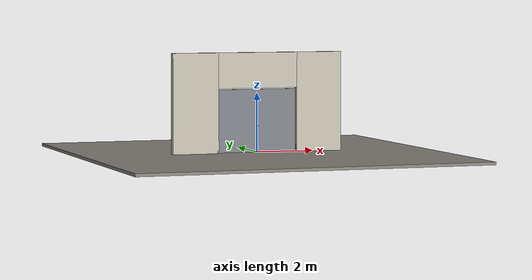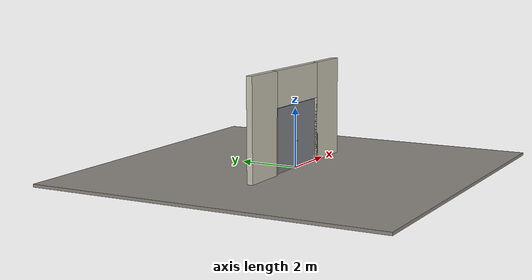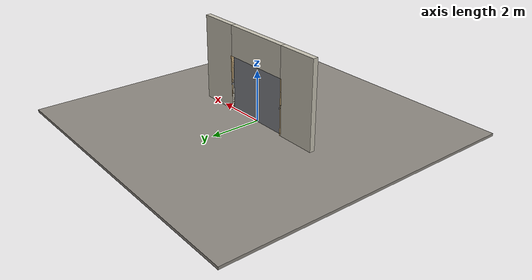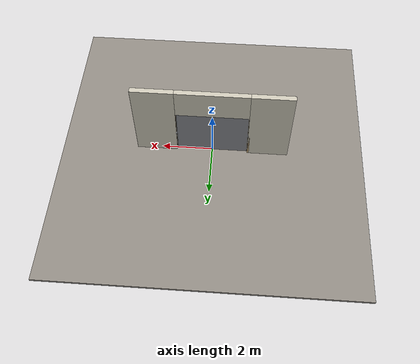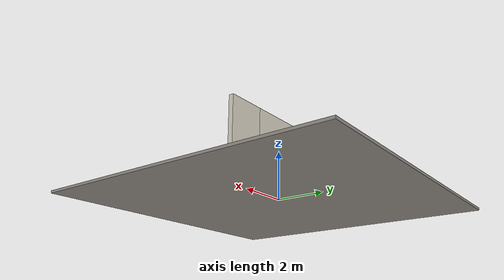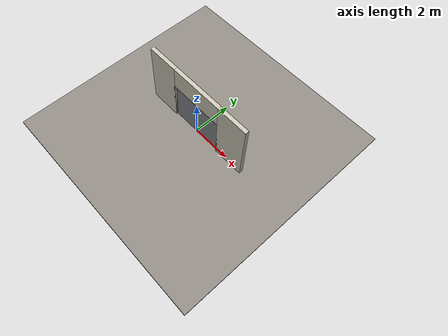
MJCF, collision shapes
<?xml version="1.0" ?>
<mujoco model="db0104_garage_tiltup_full">
  <compiler angle="radian" meshdir="../../hardware" texturedir="../../textures" autolimits="true" inertiafromgeom="false"/>
  <option timestep="0.002" integrator="implicitfast" cone="elliptic" impratio="10" noslip_iterations="3">
    <flag multiccd="enable"/>
  </option>
  <size memory="16M"/>
  <default>
    <geom condim="4" solref="0.005 1" solimp="0.95 0.99 0.001"/>
    <joint solreflimit="0.005 1" solimplimit="0.95 0.99 0.001"/>
    <tendon solreflimit="0.005 1"/>
    <equality solref="0.002 1"/>
  </default>
  <visual>
    <headlight ambient="0.4 0.4 0.4" diffuse="0.7 0.7 0.7" specular="0.2 0.2 0.2"/>
    <quality shadowsize="4096"/>
    <map znear="0.01" zfar="60"/>
  </visual>
  <asset>
    <mesh name="lever_01c630149d" file="lever_01c630149d.obj"/>
    <material name="mat_floor" rgba="0.55 0.53 0.5 1" specular="0.2" shininess="0.15" reflectance="0"/>
    <material name="mat_wall" rgba="0.78 0.76 0.7 1" specular="0.2" shininess="0.1" reflectance="0"/>
    <material name="mat_frame" rgba="0.82 0.7 0.5 1" specular="0.2" shininess="0.45" reflectance="0"/>
    <material name="mat_door" rgba="0.5 0.51 0.53 1" specular="0.23" shininess="0.4" reflectance="0.02"/>
    <material name="mat_track" rgba="0.65 0.66 0.68 1" specular="0.74" shininess="0.5" reflectance="0.36"/>
    <material name="mat_op_black_matte_metal" rgba="0.05 0.05 0.05 1" specular="0.38" shininess="0.3" reflectance="0.12"/>
    <material name="mat_trim" rgba="0.85 0.66 0.3 1" specular="0.8" shininess="0.75" reflectance="0.4"/>
    <texture name="skybox" type="skybox" builtin="gradient" rgb1="0.6 0.7 0.85" rgb2="0.9 0.92 0.95" width="256" height="256"/>
  </asset>
  <worldbody>
    <light name="sun" pos="1.5 -2.5 4" dir="-0.3 0.5 -0.8" directional="true" diffuse="0.8 0.8 0.8" specular="0.3 0.3 0.3" castshadow="true"/>
    <light name="fill" pos="-1.5 2.5 3" dir="0.3 -0.5 -0.7" directional="true" diffuse="0.35 0.35 0.4" castshadow="false"/>
    <camera name="robot_view" pos="0 -3.240625 1.997375" xyaxes="1 0 0 0 0.26963 0.962964" fovy="52"/>
    <camera name="far_view" pos="0 3.240625 1.997375" xyaxes="-1 0 0 0 -0.26963 0.962964" fovy="52"/>
    <camera name="iso" pos="2.462875 -2.722125 2.515875" xyaxes="0.741536 0.670913 0 -0.242917 0.268487 0.932151" fovy="46"/>
    <camera name="detail_handle" pos="0.2115 -1.1625 1.25" xyaxes="0.975133 0.221621 0 -0.065674 0.288965 0.955084" fovy="38"/>
    <geom name="floor" type="box" size="6 6 0.05" pos="0 0 -0.05" material="mat_floor" group="0" contype="1" conaffinity="1" friction="0.8 0.005 0.0001" density="2400"/>
    <geom name="wall_left" type="box" size="0.8025 0.1 1.69" pos="-2.1975 0 1.69" material="mat_wall" group="0" contype="1" conaffinity="1" friction="0.6 0.005 0.0001" density="800"/>
    <geom name="wall_right" type="box" size="0.8025 0.1 1.69" pos="2.1975 0 1.69" material="mat_wall" group="0" contype="1" conaffinity="1" friction="0.6 0.005 0.0001" density="800"/>
    <geom name="wall_header" type="box" size="1.395 0.1 0.6" pos="0 0 2.78" material="mat_wall" group="0" contype="1" conaffinity="1" friction="0.6 0.005 0.0001" density="800"/>
    <geom name="jamb_l" type="box" size="0.03 0.1 1.09" pos="-1.425 0 1.09" material="mat_frame" group="0" contype="1" conaffinity="1" friction="0.6 0.005 0.0001" density="400"/>
    <geom name="pivot_bracket_l" type="box" size="0.02 0.06 0.03" pos="-1.39 0.06 1.065" material="mat_track" group="1" contype="0" conaffinity="0" density="7850"/>
    <geom name="jamb_r" type="box" size="0.03 0.1 1.09" pos="1.425 0 1.09" material="mat_frame" group="0" contype="1" conaffinity="1" friction="0.6 0.005 0.0001" density="400"/>
    <geom name="pivot_bracket_r" type="box" size="0.02 0.06 0.03" pos="1.39 0.06 1.065" material="mat_track" group="1" contype="0" conaffinity="0" density="7850"/>
    <site name="approach_point" pos="0 -2 0" quat="1 0 0 0" size="0.05" rgba="0.2 0.9 0.2 0.5" group="4"/>
    <site name="goal_point" pos="0 2 0" quat="1 0 0 0" size="0.05" rgba="0.2 0.9 0.2 0.5" group="4"/>
    <site name="door_plane_center" pos="0 0 1.09" quat="1 0 0 0" size="0.02" rgba="0.2 0.9 0.2 0.5" group="4"/>
    <body name="door" pos="0 0 1.065">
      <inertial pos="0 0 0.01" mass="64.601252" quat="0 0 0.707107 0.707107" diaginertia="24.435019636 40.427597797 64.840814511"/>
      <joint name="door_hinge" type="hinge" axis="-1 0 0" limited="true" range="0 1.53589" damping="14.492277" frictionloss="4.798206" armature="0.5"/>
      <geom name="door_slab" type="box" size="1.37 0.0225 1.065" pos="0 0 0.01" material="mat_door" group="0" contype="1" conaffinity="1" friction="0.4 0.005 0.0001" density="1"/>
      <body name="t_handle" pos="0 0 -0.165">
        <inertial pos="0 -0.043758 0" mass="0.321518" quat="0.707107 0 0 -0.707107" diaginertia="0.000208692 0.000223196 0.000404264"/>
        <joint name="t_handle_hinge" type="hinge" axis="0 -1 0" limited="true" range="0 1.5708" damping="0.127804" frictionloss="0.028" stiffness="0.4" springref="-0.75" armature="0.01"/>
        <geom name="t_handle_spindle" type="cylinder" size="0.006 0.0305" pos="0 0 0" quat="0.707107 -0.707107 0 0" material="mat_op_black_matte_metal" group="1" contype="0" conaffinity="0" density="7850"/>
        <geom name="t_handle_t_n" type="mesh" mesh="lever_01c630149d" pos="0 -0.0225 0" quat="0.707107 0.707107 0 0" material="mat_op_black_matte_metal" group="1" contype="0" conaffinity="0" density="3000"/>
        <geom name="t_handle_t_col_n" type="box" size="0.055 0.008 0.008" pos="0 -0.0625 0" material="mat_op_black_matte_metal" group="3" contype="1" conaffinity="1" rgba="0.8 0.3 0.3 0.25" friction="0.6 0.005 0.0001" density="3000"/>
        <geom name="t_handle_cylinder_n" type="cylinder" size="0.0085 0.004" pos="0 -0.0725 0" quat="0.707107 -0.707107 0 0" material="mat_trim" group="1" contype="0" conaffinity="0" density="7100"/>
        <site name="t_handle_grip_n" pos="-0.0385 -0.0625 0" quat="1 0 0 0" size="0.012" rgba="0.2 0.9 0.2 0.5" group="4"/>
      </body>
    </body>
  </worldbody>
  <sensor>
    <jointpos name="door_hinge_pos" joint="door_hinge"/>
    <jointvel name="door_hinge_vel" joint="door_hinge"/>
    <jointpos name="t_handle_hinge_pos" joint="t_handle_hinge"/>
    <jointvel name="t_handle_hinge_vel" joint="t_handle_hinge"/>
  </sensor>
</mujoco>
